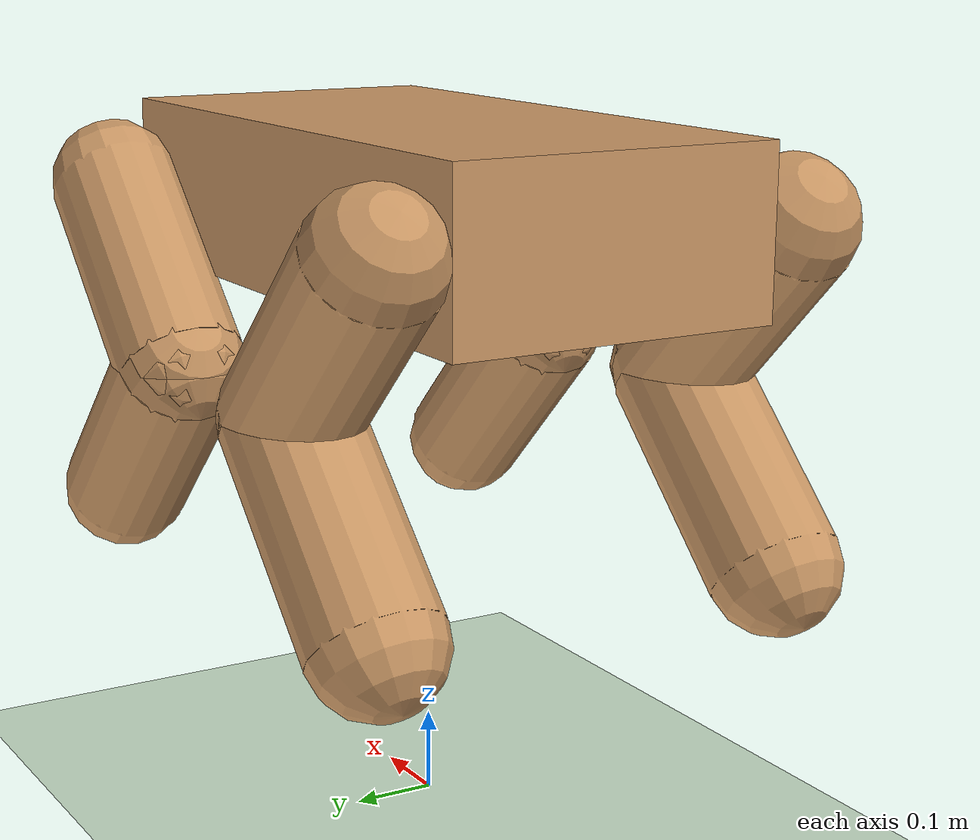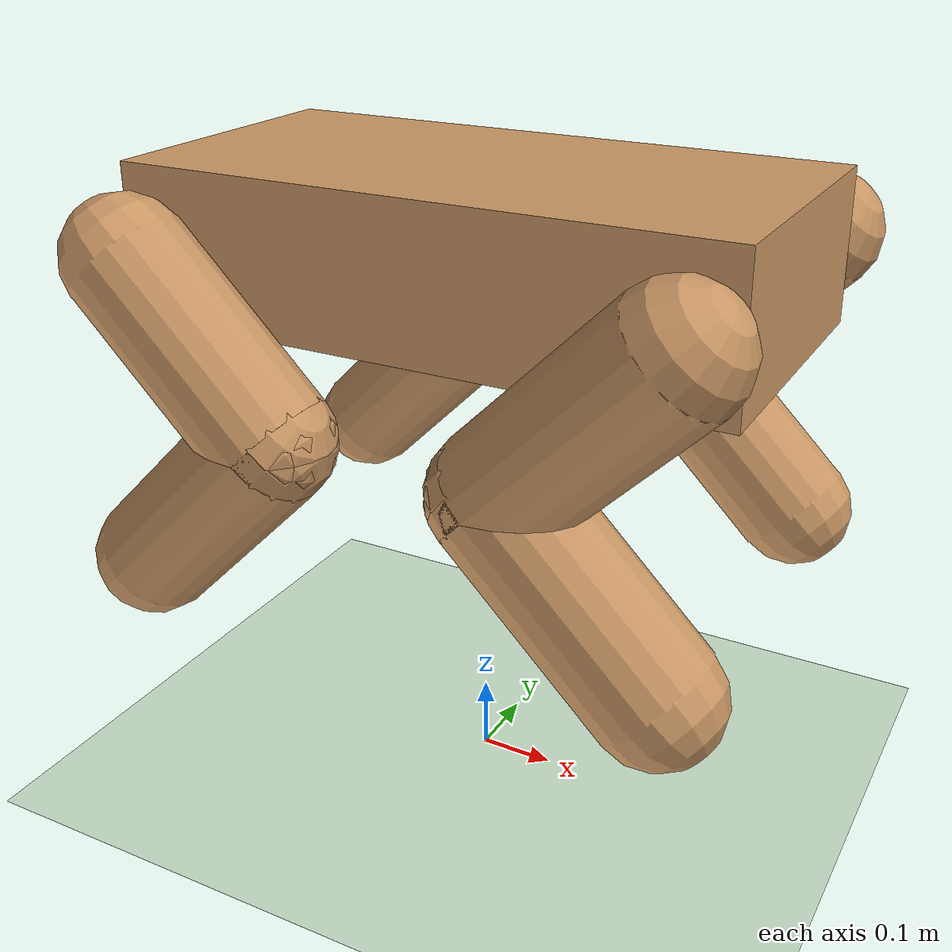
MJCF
<mujoco model="ant">
    <compiler angle="degree" coordinate="local" inertiafromgeom="true"/>
    <option integrator="RK4" timestep="0.01"/>

    <default>
        <joint armature="1" damping="10" limited="true"/>
        <geom conaffinity="0" condim="3" density="100.0" friction="2 0.5 0.5" margin="0.01" rgba="0.8 0.6 0.4 1"/>
        <tendon damping="300" stiffness="4000" />
    </default>

    <asset>
        <texture builtin="gradient" height="100" rgb1="1 1 1" rgb2="0 0 0" type="skybox" width="100"/>
        <texture builtin="flat" height="1278" mark="cross" markrgb="1 1 1" name="texgeom" random="0.01" rgb1="0.8 0.6 0.4" rgb2="0.8 0.6 0.4" type="cube" width="127"/>
        <texture builtin="checker" height="100" name="texplane" rgb1="0 0 0" rgb2="0.8 0.8 0.8" type="2d" width="100"/>
        <material name="MatPlane" reflectance="0.5" shininess="1" specular="1" texrepeat="60 60" texture="texplane"/>
        <material name="geom" texture="texgeom" texuniform="true"/>
        <hfield file="heightfieldRough1.png" name="field1" size="8 8 0.05 0.15" />
    </asset>

    <worldbody>
        <!-- HeightField -->
        <light cutoff="100" diffuse="1 1 1" dir="-0 0 -1.3" directional="true" exponent="1" pos="0 0 1.3" specular=".1 .1 .1"/>
        <geom conaffinity="1" condim="3" material="MatPlane" name="floor" pos="0 0 0" rgba="0.8 0.9 0.8 1" size="40 40 40" type="plane"/>
        <body name="torso" pos="0 0 0.75">
            <geom name="torso_geom" pos="0 0 0" size="0.4 0.2 0.1" type="box"/>
            <joint armature="0" damping="0" limited="false" margin="0.01" name="root" pos="0 0 0" type="free"/>

            <body name="front_left_leg" pos="0.35 0.26 0.00">
                <joint axis="0 1 0" name="hip_1" pos="0.0 0.0 0.0" range="-45 45" type="hinge"/>
                <geom fromto="0.0 0.0 0.0 -0.2 0.0 -0.2" name="upper_1_geom" size="0.08" type="capsule"/>
                <site name="s1_1" pos="-0.2 0.0 -0.2" size="0.005" />
                <body name="aux_1" pos="-0.2 0.0 -0.2">
                    <joint axis="0 1 0" name="knee_1" pos="0 0 0" range="-45 45" type="hinge"/>
                    <geom fromto="0.0 0.0 0.0 0.2 0.0 -0.2" name="lower_1_geom" size="0.08" type="capsule"/>
                    <site name="s1_2" pos="0.2 0.0 -0.2" size="0.005" />
                </body>
            </body>

            <body name="front_right_leg" pos="0.35 -0.26 0.00">
                <joint axis="0 1 0" name="hip_2" pos="0.0 0.0 0.0" range="-45 45" type="hinge"/>
                <geom fromto="0.0 0.0 0.0 -0.2 0.0 -0.2" name="upper_2_geom" size="0.08" type="capsule"/>
                <site name="s2_1" pos="-0.2 0.0 -0.2" size="0.005" />
                <body name="aux_2" pos="-0.2 0 -0.2">
                    <joint axis="0 1 0" name="knee_2" pos="0 0 0" range="-45 45" type="hinge"/>
                    <geom fromto="0.0 0.0 0.0 0.2 0.0 -0.2" name="lower_2_geom" size="0.08" type="capsule"/>
                    <site name="s2_2" pos="0.2 0.0 -0.2" size="0.005" />
                </body>
            </body>

            <body name="left_back_leg" pos="-0.35 0.26 0.00">
                <joint axis="0 1 0" name="hip_3" pos="0.0 0.0 0.0" range="-45 45" type="hinge"/>
                <geom fromto="0.0 0.0 0.0 0.2 0.0 -0.2" name="upper_3_geom" size="0.08" type="capsule"/>
                <site name="s3_1" pos="0.2 0.0 -0.2" size="0.005" />
                <body name="aux_3" pos="0.2 0 -0.2">
                    <joint axis="0 1 0" name="knee_3" pos="0 0 0" range="-45 45" type="hinge"/>
                    <geom fromto="0.0 0.0 0.0 -0.2 0.0 -0.2" name="lower_3_geom" size="0.08" type="capsule"/>
                    <site name="s3_2" pos="-0.2 0.0 -0.2" size="0.005" />
                </body>
            </body>

            <body name="right_back_leg" pos="-0.35 -0.26 0.00">
                <joint axis="0 1 0" name="hip_4" pos="0.0 0.0 0.0" range="-45 45" type="hinge"/>
                <geom fromto="0.0 0.0 0.0 0.2 0.0 -0.2" name="upper_4_geom" size="0.08" type="capsule"/>
                <site name="s4_1" pos="0.2 0.0 -0.2" size="0.005" />
                <body name="aux_4" pos="0.2 0 -0.2">
                    <joint axis="0 1 0" name="knee_4" pos="0 0 0" range="-45 45" type="hinge"/>
                    <geom fromto="0.0 0.0 0.0 -0.2 0.0 -0.2" name="lower_4_geom" size="0.08" type="capsule"/>
                    <site name="s4_2" pos="-0.2 0.0 -0.2" size="0.005" />
                </body>
            </body>
        </body>
    </worldbody>

    <tendon>
        <spatial limited="true" name="tend1" range="0 1" rgba=".95 .3 .3 1" width="0.02">
            <site site="s1_1" />
            <site site="s1_2" />
        </spatial>
        <spatial limited="true" name="tend2" range="0 1" rgba=".95 .3 .3 1" width="0.02">
            <site site="s2_1" />
            <site site="s2_2" />
        </spatial>
        <spatial limited="true" name="tend3" range="0 1" rgba=".95 .3 .3 1" width="0.02">
            <site site="s3_1" />
            <site site="s3_2" />
        </spatial>
        <spatial limited="true" name="tend4" range="0 1" rgba=".95 .3 .3 1" width="0.02">
            <site site="s4_1" />
            <site site="s4_2" />
        </spatial>
    </tendon>

    <actuator>
        <motor ctrllimited="true" ctrlrange="-1.0 1.0" joint="hip_1" gear="150"/>
        <motor ctrllimited="true" ctrlrange="-1.0 1.0" joint="hip_2" gear="150"/>
        <motor ctrllimited="true" ctrlrange="-1.0 1.0" joint="hip_3" gear="150"/>
        <motor ctrllimited="true" ctrlrange="-1.0 1.0" joint="hip_4" gear="150"/>

        <motor ctrllimited="true" ctrlrange="-1.0 1.0" joint="knee_1" gear="150"/>
        <motor ctrllimited="true" ctrlrange="-1.0 1.0" joint="knee_2" gear="150"/>
        <motor ctrllimited="true" ctrlrange="-1.0 1.0" joint="knee_3" gear="150"/>
        <motor ctrllimited="true" ctrlrange="-1.0 1.0" joint="knee_4" gear="150"/>

        <motor ctrllimited="true" ctrlrange="-1.0 1.0" gear="500" tendon="tend1" />
        <motor ctrllimited="true" ctrlrange="-1.0 1.0" gear="500" tendon="tend2" />
        <motor ctrllimited="true" ctrlrange="-1.0 1.0" gear="500" tendon="tend3" />
        <motor ctrllimited="true" ctrlrange="-1.0 1.0" gear="500" tendon="tend4" />
    </actuator>

</mujoco>
